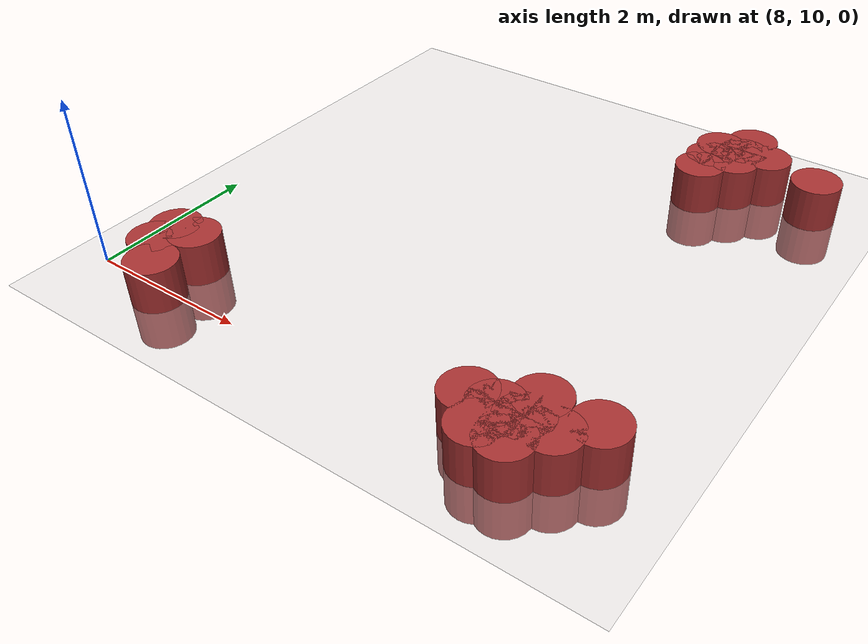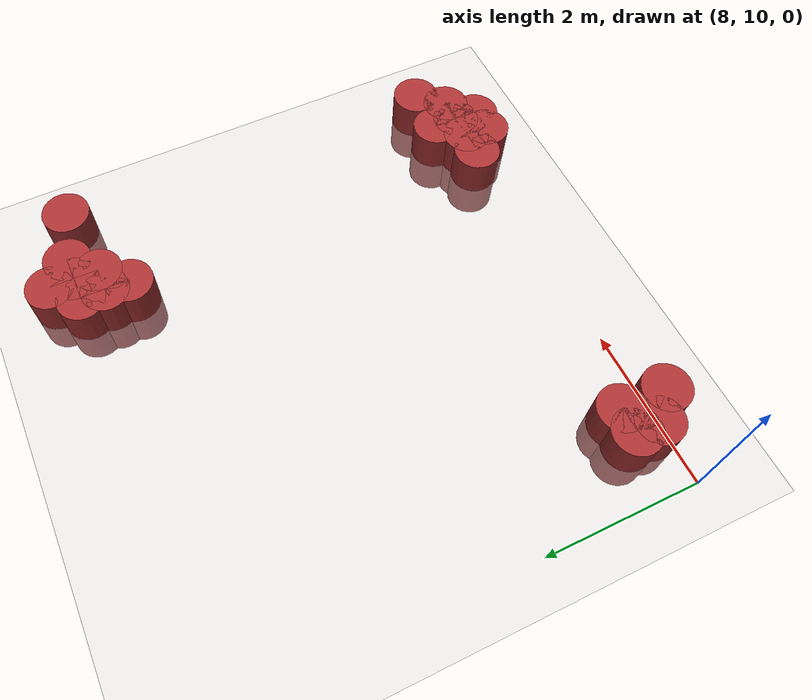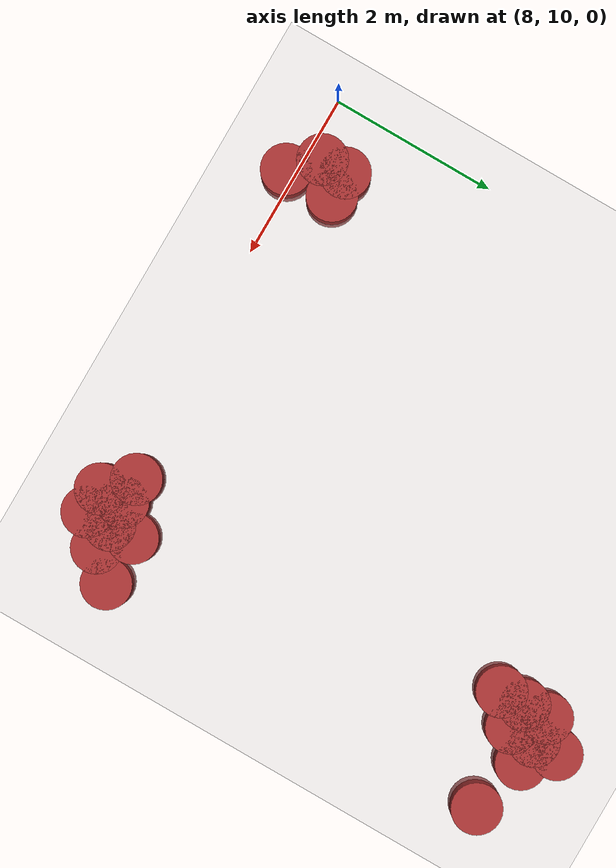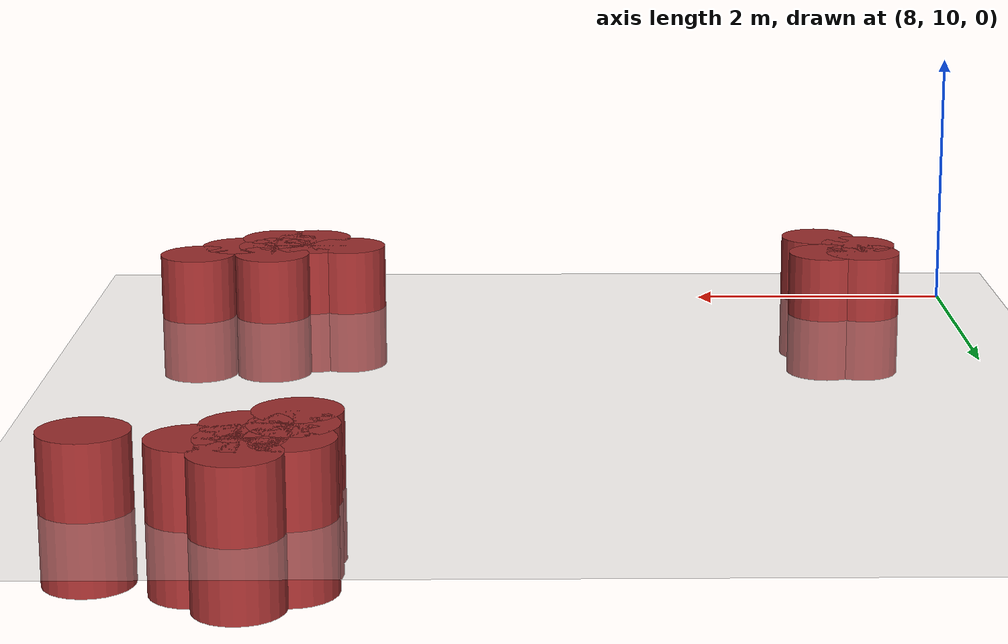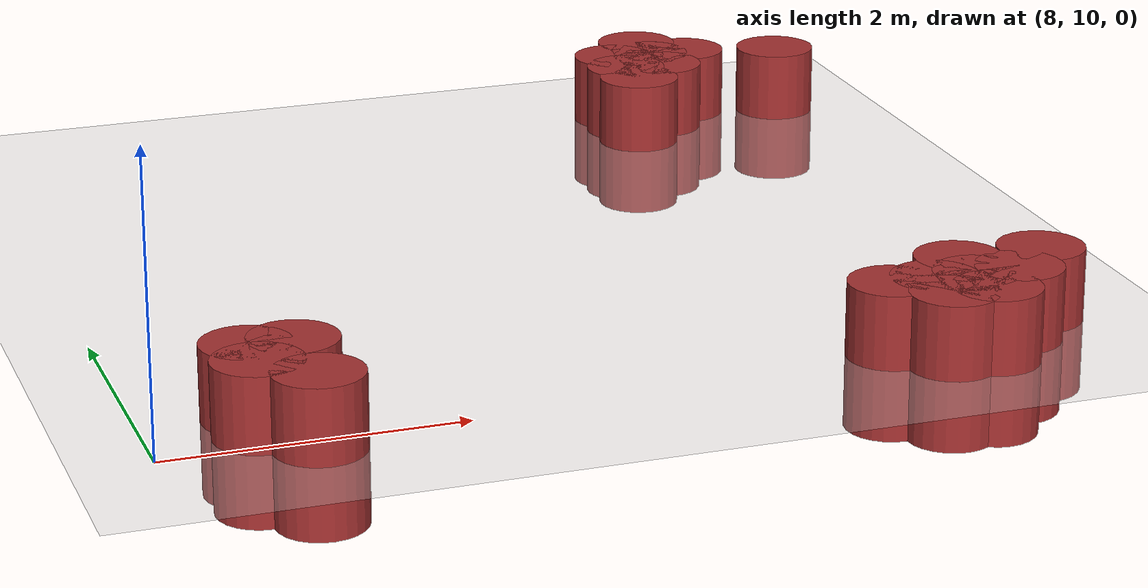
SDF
<sdf version="1.6">
 <world name="default">
  <model name="ground_plane">
   <static>1</static>
   <link name="link">
    <collision name="collision">
     <geometry><plane><normal>0 0 1</normal><size>100 100</size></plane></geometry>
     <surface><friction><ode><mu>100</mu><mu2>50</mu2></ode></friction></surface>
    </collision>
    <visual name="visual">
     <cast_shadows>0</cast_shadows>
     <geometry><plane><normal>0 0 1</normal><size>100 100</size></plane></geometry>
     <material>
      <script><uri>file://media/materials/scripts/gazebo.material</uri><name>Gazebo/Grey</name></script>
     </material>
    </visual>
   </link>
  </model>
  <model name="unit_cylinder_89">
   <static>1</static>
   <pose>8.7 10.2 0 0 -0 0</pose>
   <link name="link">
    <inertial>
     <mass>1</mass>
     <inertia><ixx>0.145833</ixx><ixy>0</ixy><ixz>0</ixz><iyy>0.145833</iyy><iyz>0</iyz><izz>0.125</izz></inertia>
    </inertial>
    <collision name="collision">
     <geometry><cylinder><radius>0.3</radius><length>1</length></cylinder></geometry>
    </collision>
    <visual name="visual">
     <geometry><cylinder><radius>0.3</radius><length>1</length></cylinder></geometry>
     <material><ambient>0.648 0.192 0.192 1</ambient><diffuse>0.648 0.192 0.192 1</diffuse></material>
     <material>
      <script><name>Gazebo/Grey</name><uri>file://media/materials/scripts/gazebo.material</uri></script>
     </material>
    </visual>
   </link>
  </model>
  <model name="unit_cylinder_90">
   <static>1</static>
   <pose>8.7 10.5 0 0 -0 0</pose>
   <link name="link">
    <inertial>
     <mass>1</mass>
     <inertia><ixx>0.145833</ixx><ixy>0</ixy><ixz>0</ixz><iyy>0.145833</iyy><iyz>0</iyz><izz>0.125</izz></inertia>
    </inertial>
    <collision name="collision">
     <geometry><cylinder><radius>0.3</radius><length>1</length></cylinder></geometry>
    </collision>
    <visual name="visual">
     <geometry><cylinder><radius>0.3</radius><length>1</length></cylinder></geometry>
     <material><ambient>0.648 0.192 0.192 1</ambient><diffuse>0.648 0.192 0.192 1</diffuse></material>
     <material>
      <script><name>Gazebo/Grey</name><uri>file://media/materials/scripts/gazebo.material</uri></script>
     </material>
    </visual>
   </link>
  </model>
  <model name="unit_cylinder_98">
   <static>1</static>
   <pose>9 9.9 0 0 -0 0</pose>
   <link name="link">
    <inertial>
     <mass>1</mass>
     <inertia><ixx>0.145833</ixx><ixy>0</ixy><ixz>0</ixz><iyy>0.145833</iyy><iyz>0</iyz><izz>0.125</izz></inertia>
    </inertial>
    <collision name="collision">
     <geometry><cylinder><radius>0.3</radius><length>1</length></cylinder></geometry>
    </collision>
    <visual name="visual">
     <geometry><cylinder><radius>0.3</radius><length>1</length></cylinder></geometry>
     <material><ambient>0.648 0.192 0.192 1</ambient><diffuse>0.648 0.192 0.192 1</diffuse></material>
     <material>
      <script><name>Gazebo/Grey</name><uri>file://media/materials/scripts/gazebo.material</uri></script>
     </material>
    </visual>
   </link>
  </model>
  <model name="unit_cylinder_99">
   <static>1</static>
   <pose>9 10.5 0 0 -0 0</pose>
   <link name="link">
    <inertial>
     <mass>1</mass>
     <inertia><ixx>0.145833</ixx><ixy>0</ixy><ixz>0</ixz><iyy>0.145833</iyy><iyz>0</iyz><izz>0.125</izz></inertia>
    </inertial>
    <collision name="collision">
     <geometry><cylinder><radius>0.3</radius><length>1</length></cylinder></geometry>
    </collision>
    <visual name="visual">
     <geometry><cylinder><radius>0.3</radius><length>1</length></cylinder></geometry>
     <material><ambient>0.648 0.192 0.192 1</ambient><diffuse>0.648 0.192 0.192 1</diffuse></material>
     <material>
      <script><name>Gazebo/Grey</name><uri>file://media/materials/scripts/gazebo.material</uri></script>
     </material>
    </visual>
   </link>
  </model>
  <model name="unit_cylinder_128">
   <static>1</static>
   <pose>12.9 10.2 0 0 -0 0</pose>
   <link name="link">
    <inertial>
     <mass>1</mass>
     <inertia><ixx>0.145833</ixx><ixy>0</ixy><ixz>0</ixz><iyy>0.145833</iyy><iyz>0</iyz><izz>0.125</izz></inertia>
    </inertial>
    <collision name="collision">
     <geometry><cylinder><radius>0.3</radius><length>1</length></cylinder></geometry>
    </collision>
    <visual name="visual">
     <geometry><cylinder><radius>0.3</radius><length>1</length></cylinder></geometry>
     <material><ambient>0.648 0.192 0.192 1</ambient><diffuse>0.648 0.192 0.192 1</diffuse></material>
     <material>
      <script><name>Gazebo/Grey</name><uri>file://media/materials/scripts/gazebo.material</uri></script>
     </material>
    </visual>
   </link>
  </model>
  <model name="unit_cylinder_129">
   <static>1</static>
   <pose>12.9 15 0 0 -0 0</pose>
   <link name="link">
    <inertial>
     <mass>1</mass>
     <inertia><ixx>0.145833</ixx><ixy>0</ixy><ixz>0</ixz><iyy>0.145833</iyy><iyz>0</iyz><izz>0.125</izz></inertia>
    </inertial>
    <collision name="collision">
     <geometry><cylinder><radius>0.3</radius><length>1</length></cylinder></geometry>
    </collision>
    <visual name="visual">
     <geometry><cylinder><radius>0.3</radius><length>1</length></cylinder></geometry>
     <material><ambient>0.648 0.192 0.192 1</ambient><diffuse>0.648 0.192 0.192 1</diffuse></material>
     <material>
      <script><name>Gazebo/Grey</name><uri>file://media/materials/scripts/gazebo.material</uri></script>
     </material>
    </visual>
   </link>
  </model>
  <model name="unit_cylinder_130">
   <static>1</static>
   <pose>12.9 15.3 0 0 -0 0</pose>
   <link name="link">
    <inertial>
     <mass>1</mass>
     <inertia><ixx>0.145833</ixx><ixy>0</ixy><ixz>0</ixz><iyy>0.145833</iyy><iyz>0</iyz><izz>0.125</izz></inertia>
    </inertial>
    <collision name="collision">
     <geometry><cylinder><radius>0.3</radius><length>1</length></cylinder></geometry>
    </collision>
    <visual name="visual">
     <geometry><cylinder><radius>0.3</radius><length>1</length></cylinder></geometry>
     <material><ambient>0.648 0.192 0.192 1</ambient><diffuse>0.648 0.192 0.192 1</diffuse></material>
     <material>
      <script><name>Gazebo/Grey</name><uri>file://media/materials/scripts/gazebo.material</uri></script>
     </material>
    </visual>
   </link>
  </model>
  <model name="unit_cylinder_131">
   <static>1</static>
   <pose>12.9 15.6 0 0 -0 0</pose>
   <link name="link">
    <inertial>
     <mass>1</mass>
     <inertia><ixx>0.145833</ixx><ixy>0</ixy><ixz>0</ixz><iyy>0.145833</iyy><iyz>0</iyz><izz>0.125</izz></inertia>
    </inertial>
    <collision name="collision">
     <geometry><cylinder><radius>0.3</radius><length>1</length></cylinder></geometry>
    </collision>
    <visual name="visual">
     <geometry><cylinder><radius>0.3</radius><length>1</length></cylinder></geometry>
     <material><ambient>0.648 0.192 0.192 1</ambient><diffuse>0.648 0.192 0.192 1</diffuse></material>
     <material>
      <script><name>Gazebo/Grey</name><uri>file://media/materials/scripts/gazebo.material</uri></script>
     </material>
    </visual>
   </link>
  </model>
  <model name="unit_cylinder_132">
   <static>1</static>
   <pose>13.2 9.9 0 0 -0 0</pose>
   <link name="link">
    <inertial>
     <mass>1</mass>
     <inertia><ixx>0.145833</ixx><ixy>0</ixy><ixz>0</ixz><iyy>0.145833</iyy><iyz>0</iyz><izz>0.125</izz></inertia>
    </inertial>
    <collision name="collision">
     <geometry><cylinder><radius>0.3</radius><length>1</length></cylinder></geometry>
    </collision>
    <visual name="visual">
     <geometry><cylinder><radius>0.3</radius><length>1</length></cylinder></geometry>
     <material><ambient>0.648 0.192 0.192 1</ambient><diffuse>0.648 0.192 0.192 1</diffuse></material>
     <material>
      <script><name>Gazebo/Grey</name><uri>file://media/materials/scripts/gazebo.material</uri></script>
     </material>
    </visual>
   </link>
  </model>
  <model name="unit_cylinder_133">
   <static>1</static>
   <pose>13.2 10.2 0 0 -0 0</pose>
   <link name="link">
    <inertial>
     <mass>1</mass>
     <inertia><ixx>0.145833</ixx><ixy>0</ixy><ixz>0</ixz><iyy>0.145833</iyy><iyz>0</iyz><izz>0.125</izz></inertia>
    </inertial>
    <collision name="collision">
     <geometry><cylinder><radius>0.3</radius><length>1</length></cylinder></geometry>
    </collision>
    <visual name="visual">
     <geometry><cylinder><radius>0.3</radius><length>1</length></cylinder></geometry>
     <material><ambient>0.648 0.192 0.192 1</ambient><diffuse>0.648 0.192 0.192 1</diffuse></material>
     <material>
      <script><name>Gazebo/Grey</name><uri>file://media/materials/scripts/gazebo.material</uri></script>
     </material>
    </visual>
   </link>
  </model>
  <model name="unit_cylinder_134">
   <static>1</static>
   <pose>13.2 15.3 0 0 -0 0</pose>
   <link name="link">
    <inertial>
     <mass>1</mass>
     <inertia><ixx>0.145833</ixx><ixy>0</ixy><ixz>0</ixz><iyy>0.145833</iyy><iyz>0</iyz><izz>0.125</izz></inertia>
    </inertial>
    <collision name="collision">
     <geometry><cylinder><radius>0.3</radius><length>1</length></cylinder></geometry>
    </collision>
    <visual name="visual">
     <geometry><cylinder><radius>0.3</radius><length>1</length></cylinder></geometry>
     <material><ambient>0.648 0.192 0.192 1</ambient><diffuse>0.648 0.192 0.192 1</diffuse></material>
     <material>
      <script><name>Gazebo/Grey</name><uri>file://media/materials/scripts/gazebo.material</uri></script>
     </material>
    </visual>
   </link>
  </model>
  <model name="unit_cylinder_135">
   <static>1</static>
   <pose>13.2 15.6 0 0 -0 0</pose>
   <link name="link">
    <inertial>
     <mass>1</mass>
     <inertia><ixx>0.145833</ixx><ixy>0</ixy><ixz>0</ixz><iyy>0.145833</iyy><iyz>0</iyz><izz>0.125</izz></inertia>
    </inertial>
    <collision name="collision">
     <geometry><cylinder><radius>0.3</radius><length>1</length></cylinder></geometry>
    </collision>
    <visual name="visual">
     <geometry><cylinder><radius>0.3</radius><length>1</length></cylinder></geometry>
     <material><ambient>0.648 0.192 0.192 1</ambient><diffuse>0.648 0.192 0.192 1</diffuse></material>
     <material>
      <script><name>Gazebo/Grey</name><uri>file://media/materials/scripts/gazebo.material</uri></script>
     </material>
    </visual>
   </link>
  </model>
  <model name="unit_cylinder_136">
   <static>1</static>
   <pose>13.2 15.9 0 0 -0 0</pose>
   <link name="link">
    <inertial>
     <mass>1</mass>
     <inertia><ixx>0.145833</ixx><ixy>0</ixy><ixz>0</ixz><iyy>0.145833</iyy><iyz>0</iyz><izz>0.125</izz></inertia>
    </inertial>
    <collision name="collision">
     <geometry><cylinder><radius>0.3</radius><length>1</length></cylinder></geometry>
    </collision>
    <visual name="visual">
     <geometry><cylinder><radius>0.3</radius><length>1</length></cylinder></geometry>
     <material><ambient>0.648 0.192 0.192 1</ambient><diffuse>0.648 0.192 0.192 1</diffuse></material>
     <material>
      <script><name>Gazebo/Grey</name><uri>file://media/materials/scripts/gazebo.material</uri></script>
     </material>
    </visual>
   </link>
  </model>
  <model name="unit_cylinder_137">
   <static>1</static>
   <pose>13.5 9.9 0 0 -0 0</pose>
   <link name="link">
    <inertial>
     <mass>1</mass>
     <inertia><ixx>0.145833</ixx><ixy>0</ixy><ixz>0</ixz><iyy>0.145833</iyy><iyz>0</iyz><izz>0.125</izz></inertia>
    </inertial>
    <collision name="collision">
     <geometry><cylinder><radius>0.3</radius><length>1</length></cylinder></geometry>
    </collision>
    <visual name="visual">
     <geometry><cylinder><radius>0.3</radius><length>1</length></cylinder></geometry>
     <material><ambient>0.648 0.192 0.192 1</ambient><diffuse>0.648 0.192 0.192 1</diffuse></material>
     <material>
      <script><name>Gazebo/Grey</name><uri>file://media/materials/scripts/gazebo.material</uri></script>
     </material>
    </visual>
   </link>
  </model>
  <model name="unit_cylinder_138">
   <static>1</static>
   <pose>13.5 10.2 0 0 -0 0</pose>
   <link name="link">
    <inertial>
     <mass>1</mass>
     <inertia><ixx>0.145833</ixx><ixy>0</ixy><ixz>0</ixz><iyy>0.145833</iyy><iyz>0</iyz><izz>0.125</izz></inertia>
    </inertial>
    <collision name="collision">
     <geometry><cylinder><radius>0.3</radius><length>1</length></cylinder></geometry>
    </collision>
    <visual name="visual">
     <geometry><cylinder><radius>0.3</radius><length>1</length></cylinder></geometry>
     <material><ambient>0.648 0.192 0.192 1</ambient><diffuse>0.648 0.192 0.192 1</diffuse></material>
     <material>
      <script><name>Gazebo/Grey</name><uri>file://media/materials/scripts/gazebo.material</uri></script>
     </material>
    </visual>
   </link>
  </model>
  <model name="unit_cylinder_139">
   <static>1</static>
   <pose>13.5 10.5 0 0 -0 0</pose>
   <link name="link">
    <inertial>
     <mass>1</mass>
     <inertia><ixx>0.145833</ixx><ixy>0</ixy><ixz>0</ixz><iyy>0.145833</iyy><iyz>0</iyz><izz>0.125</izz></inertia>
    </inertial>
    <collision name="collision">
     <geometry><cylinder><radius>0.3</radius><length>1</length></cylinder></geometry>
    </collision>
    <visual name="visual">
     <geometry><cylinder><radius>0.3</radius><length>1</length></cylinder></geometry>
     <material><ambient>0.648 0.192 0.192 1</ambient><diffuse>0.648 0.192 0.192 1</diffuse></material>
     <material>
      <script><name>Gazebo/Grey</name><uri>file://media/materials/scripts/gazebo.material</uri></script>
     </material>
    </visual>
   </link>
  </model>
  <model name="unit_cylinder_140">
   <static>1</static>
   <pose>13.5 15.6 0 0 -0 0</pose>
   <link name="link">
    <inertial>
     <mass>1</mass>
     <inertia><ixx>0.145833</ixx><ixy>0</ixy><ixz>0</ixz><iyy>0.145833</iyy><iyz>0</iyz><izz>0.125</izz></inertia>
    </inertial>
    <collision name="collision">
     <geometry><cylinder><radius>0.3</radius><length>1</length></cylinder></geometry>
    </collision>
    <visual name="visual">
     <geometry><cylinder><radius>0.3</radius><length>1</length></cylinder></geometry>
     <material><ambient>0.648 0.192 0.192 1</ambient><diffuse>0.648 0.192 0.192 1</diffuse></material>
     <material>
      <script><name>Gazebo/Grey</name><uri>file://media/materials/scripts/gazebo.material</uri></script>
     </material>
    </visual>
   </link>
  </model>
  <model name="unit_cylinder_143">
   <static>1</static>
   <pose>13.8 10.2 0 0 -0 0</pose>
   <link name="link">
    <inertial>
     <mass>1</mass>
     <inertia><ixx>0.145833</ixx><ixy>0</ixy><ixz>0</ixz><iyy>0.145833</iyy><iyz>0</iyz><izz>0.125</izz></inertia>
    </inertial>
    <collision name="collision">
     <geometry><cylinder><radius>0.3</radius><length>1</length></cylinder></geometry>
    </collision>
    <visual name="visual">
     <geometry><cylinder><radius>0.3</radius><length>1</length></cylinder></geometry>
     <material><ambient>0.648 0.192 0.192 1</ambient><diffuse>0.648 0.192 0.192 1</diffuse></material>
     <material>
      <script><name>Gazebo/Grey</name><uri>file://media/materials/scripts/gazebo.material</uri></script>
     </material>
    </visual>
   </link>
  </model>
  <model name="unit_cylinder_147">
   <static>1</static>
   <pose>14.1 10.5 0 0 -0 0</pose>
   <link name="link">
    <inertial>
     <mass>1</mass>
     <inertia><ixx>0.145833</ixx><ixy>0</ixy><ixz>0</ixz><iyy>0.145833</iyy><iyz>0</iyz><izz>0.125</izz></inertia>
    </inertial>
    <collision name="collision">
     <geometry><cylinder><radius>0.3</radius><length>1</length></cylinder></geometry>
    </collision>
    <visual name="visual">
     <geometry><cylinder><radius>0.3</radius><length>1</length></cylinder></geometry>
     <material><ambient>0.648 0.192 0.192 1</ambient><diffuse>0.648 0.192 0.192 1</diffuse></material>
     <material>
      <script><name>Gazebo/Grey</name><uri>file://media/materials/scripts/gazebo.material</uri></script>
     </material>
    </visual>
   </link>
  </model>
  <model name="unit_cylinder_185">
   <static>1</static>
   <pose>14.1914 15.4233 0 0 -0 0</pose>
   <link name="link">
    <inertial>
     <mass>1</mass>
     <inertia><ixx>0.145833</ixx><ixy>0</ixy><ixz>0</ixz><iyy>0.145833</iyy><iyz>0</iyz><izz>0.125</izz></inertia>
    </inertial>
    <collision name="collision">
     <geometry><cylinder><radius>0.3</radius><length>1</length></cylinder></geometry>
    </collision>
    <visual name="visual">
     <geometry><cylinder><radius>0.3</radius><length>1</length></cylinder></geometry>
     <material><ambient>0.648 0.192 0.192 1</ambient><diffuse>0.648 0.192 0.192 1</diffuse></material>
     <material>
      <script><name>Gazebo/Grey</name><uri>file://media/materials/scripts/gazebo.material</uri></script>
     </material>
    </visual>
   </link>
  </model>
 </world>
</sdf>
